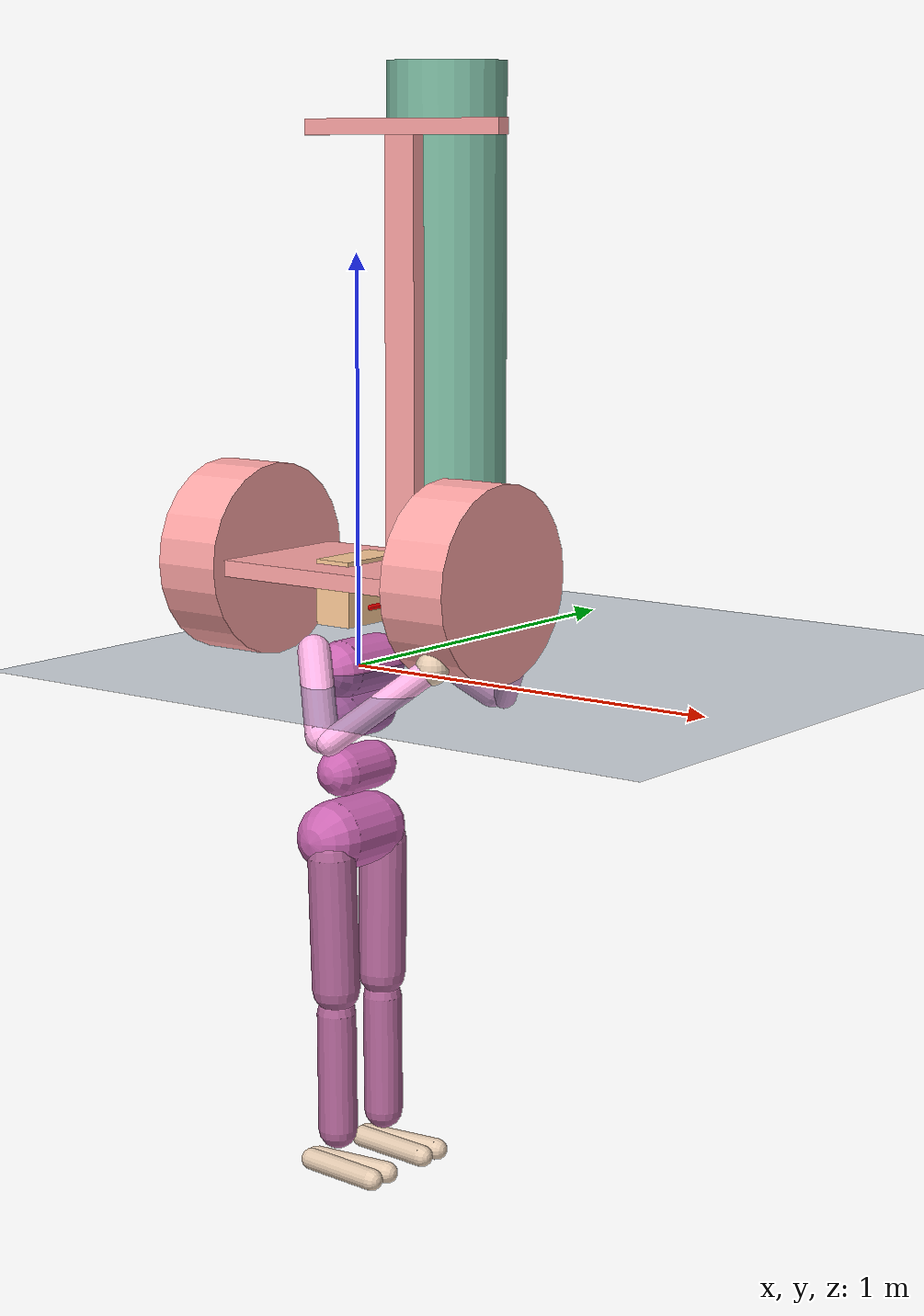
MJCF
<mujoco model="golf follow scene">
    <compiler angle="radian"/>
    <size njmax="500" nconmax="100"/>
    <option gravity="0 0 -9.81" viscosity="0.002" timestep="0.001"/>

    <default>
        <!-- 所有 geom 默认不参与碰撞 -->
        <geom contype="0" conaffinity="0"/>
    </default>

    <!-- ========== 引入模型模块 ========== -->
    <include file="human.xml"/>
    <include file="golf10_barfh_MJW.xml"/>

    <!-- ========== 统计 & 视觉 ========== -->
    <statistic center="0 0 0.3" extent="0.3"/>

    <visual>
        <headlight diffuse="0.6 0.6 0.6" ambient="0.3 0.3 0.3" specular="0 0 0"/>
        <rgba haze="0.15 0.25 0.35 1"/>
        <global azimuth="120" elevation="-15" fovy="50"/>
    </visual>

    <asset>
        <!-- ========== 行人材质（human.xml 依赖，从原 ebike 场景迁移） ========== -->
        <material name="mat_head" rgba="1 0.8 0.6 1"/>
        <material name="mat_handfoot" rgba="0.9 0.8 0.7 1"/>
        <material name="mat_torso" rgba="0.8 0.4 0.7 1"/>
        <material name="mat_arm" rgba="1.0 0.7 0.9 1"/>
        <material name="mat_leg" rgba="0.7 0.4 0.6 1"/>

        <!-- 天空盒 -->
        <texture type="skybox" builtin="gradient" rgb1="0.8 0.8 0.8" rgb2="0 0.3 0.5"
                 width="512" height="3072"/>
        <!-- 地面纹理 -->
        <texture type="2d" name="groundplane" builtin="checker" mark="edge"
                 rgb1="0.2 0.3 0.4" rgb2="0.1 0.2 0.3" markrgb="0.8 0.8 0.8"
                 width="300" height="300"/>
        <material name="groundplane" texture="groundplane" texuniform="true"
                  texrepeat="2 2" reflectance="0.2"/>
    </asset>

    <worldbody>
        <light pos="0 0 1.5" dir="0 0 -1" directional="true"/>
        <!-- 地面：唯一接触基准（与车轮 contype=2/conaffinity=1 互配） -->
        <geom name="ground" size="0 0 0.05" type="plane" friction="1.0 1.0 0.1"
              pos="0 0 0" material="groundplane" contype="1" conaffinity="2"/>
    </worldbody>
</mujoco>

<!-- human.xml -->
<mujoco>
    <worldbody>
        <body name="human_main" mocap="true">
            <inertial pos="0 0 0" mass="1.0" diaginertia="0.2 0.1 0.11"/>
            <geom name="torso" type="capsule" fromto="0 -.07 0 0 .07 0" size="0.07" material="mat_torso" />
            <geom name="head" type="box" pos="0 0 0.19" size="0.05 0.1 0.08" material="mat_head"/>
            <body name="head_face_deco" pos="0.133 0 0.19" euler="0 0 1.57">
                <geom type="sphere" size="0.02" pos="-0.05 0.08 0.03" rgba="0 0 0 1"/>
                <geom type="sphere" size="0.02" pos="0.05 0.08 0.03" rgba="0 0 0 1"/>
                <geom type="capsule" fromto="-0.02 0.09 -0.04 0.02 0.09 -0.04" size="0.01" rgba="1 0 0 1"/>
            </body>
            <geom name="uwaist" type="capsule" fromto="-.01 -.06 -.12 -.01 .06 -.12" size="0.06" material="mat_torso"/>
            <body name="right_upper_arm" pos="0 -0.17 0.06">
                <joint name="right_shoulder" type="hinge" pos="0 0 0" axis="0 1 0" limited="true" range="-1.2 1.2" stiffness="0" armature="0.0068" />
                <geom name="right_uarm" material="mat_arm" type="capsule" fromto="0 0 0 .16 -.16 -.16"  size="0.04 0.16" />
                <body name="right_lower_arm" pos=".18 -.18 -.18">
                    <joint name="right_elbow" type="hinge" pos="0 0 0" axis="0 -1 1" limited="true" range="-0.5 0.5" stiffness="0" armature="0.0028" />
                    <geom name="right_larm" material="mat_arm"  type="capsule" fromto="0.01 0.01 0.01 .17 .17 .17"  size="0.031" />
                    <geom name="right_hand" material="mat_handfoot" type="sphere" pos=".18 .18 .18"  size="0.04"/>
                </body>
            </body>
            <body name="left_upper_arm" pos="0 0.17 0.06">
                <joint name="left_shoulder" type="hinge" pos="0 0 0" axis="0 1 0" limited="true" range="-1.2 1.2" stiffness="0" armature="0.0068" />
                <geom name="left_uarm" material="mat_arm" type="capsule" fromto="0 0 0 .16 .16 -.16"  size="0.04 0.16" />
                <body name="left_lower_arm" pos=".18 .18 -.18">
                    <joint name="left_elbow" type="hinge" pos="0 0 0" axis="0 1 1" limited="true" range="-0.5 0.5" stiffness="0" armature="0.0028" />
                    <geom name="left_larm" material="mat_arm" type="capsule" fromto="0.01 -0.01 0.01 .17 -.17 .17"  size="0.031" />
                    <geom name="left_hand" material="mat_handfoot" type="sphere" pos=".18 -.18 .18"  size="0.04"/>
                </body>
            </body>
            <body name="lwaist" pos="-.01 0 -0.260" quat="1.000 0 -0.002 0" >
                <geom name="lwaist" type="capsule" fromto="0 -.06 0 0 .06 0"  size="0.06" material="mat_torso"/>
                <joint name="abdomen_z" type="hinge" pos="0 0 0.065" axis="0 0 1" damping="5" stiffness="20" armature="0.02" />
                <joint name="abdomen_y" type="hinge" pos="0 0 0.065" axis="0 1 0" damping="5" stiffness="10" armature="0.02" />
                <body name="pelvis" pos="0 0 -0.165" quat="1.000 0 -0.002 0">
                    <joint name="abdomen_x" type="hinge" pos="0 0 0.1" axis="1 0 0" damping="5" stiffness="10" armature="0.02" />
                    <geom name="butt" type="capsule" fromto="-.02 -.07 0 -.02 .07 0"  size="0.09" material="mat_torso"/>
                    <body name="right_thigh" pos="0 -0.1 -0.04" >
                        <joint name="right_hip_x" type="hinge" pos="0 0 0" axis="1 0 0" damping="5" stiffness="10" armature="0.01" />
                        <joint name="right_hip_z" type="hinge" pos="0 0 0" axis="0 0 1" damping="5" stiffness="10" armature="0.01" />
                        <joint name="right_hip_y" type="hinge" pos="0 0 0" axis="0 1 0" damping="5" stiffness="20" armature="0.01" />
                        <geom name="right_thigh" type="capsule" fromto="0 0 0 0 0.01 -.34" material="mat_leg" size="0.06" />
                        <body name="right_shin" pos="0 0.01 -0.403" >
                            <joint name="right_knee" type="hinge" pos="0 0 .02" axis="0 -1 0" stiffness="1" armature="0.0060" />
                            <geom name="right_shin" type="capsule" fromto="0 0 0 0 0 -.3" material="mat_leg"  size="0.049" />
                            <body name="right_foot" pos="0 0 -.39" >
                                <joint name="right_ankle_y" type="hinge" pos="0 0 0.08" axis="0 1 0" stiffness="4" armature="0.0008" />
                                <joint name="right_ankle_x" type="hinge" pos="0 0 0.04" axis="1 0 0.5" stiffness="1"  armature="0.0006" />
                                <geom name="right_foot_cap1" type="capsule" material="mat_handfoot" fromto="-.07 -0.02 0 0.14 -0.04 0" size="0.027" />
                                <geom name="right_foot_cap2" type="capsule" material="mat_handfoot" fromto="-.07 0 0 0.14  0.02 0" size="0.027" />
                            </body>
                        </body>
                    </body>
                    <body name="left_thigh" pos="0 0.1 -0.04" >
                        <joint name="left_hip_x" type="hinge" pos="0 0 0" axis="-1 0 0" damping="5" stiffness="10" armature="0.01" />
                        <joint name="left_hip_z" type="hinge" pos="0 0 0" axis="0 0 -1" damping="5" stiffness="10" armature="0.01" />
                        <joint name="left_hip_y" type="hinge" pos="0 0 0" axis="0 1 0" damping="5" stiffness="20" armature="0.01" />
                        <geom name="left_thigh" material="mat_leg" type="capsule" fromto="0 0 0 0 -0.01 -.34"  size="0.06" />
                        <body name="left_shin" pos="0 -0.01 -0.403" >
                            <joint name="left_knee" type="hinge" pos="0 0 .02" axis="0 -1 0" stiffness="1" armature="0.0060" />
                            <geom name="left_shin" material="mat_leg" type="capsule" fromto="0 0 0 0 0 -.3" size="0.049" />
                            <body name="left_foot" pos="0 0 -.39" >
                                <joint name="left_ankle_y" type="hinge" pos="0 0 0.08" axis="0 1 0" stiffness="4" armature="0.0008" />
                                <joint name="left_ankle_x" type="hinge" pos="0 0 0.04" axis="1 0 0.5" stiffness="1"  armature="0.0006" />
                                <geom name="left_foot_cap1" material="mat_handfoot" type="capsule" fromto="-.07 0.02 0 0.14 0.04 0"  size="0.027" />
                                <geom name="left_foot_cap2" material="mat_handfoot" type="capsule" fromto="-.07 0 0 0.14  -0.02 0"  size="0.027" />
                            </body>
                        </body>
                    </body>
                </body>
            </body>
        </body>
    </worldbody>
</mujoco>

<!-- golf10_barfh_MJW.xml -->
<!-- 双轮差速高尔夫球车模型 -->
<!-- 尺寸：轮径48cm，轮宽18cm，轴长70cm，车把104cm，球包120cm -->
<!-- 质量：底盘37.8kg，车把5kg，球包10kg，车轮4.5kg×2，总重61.8kg -->
<mujoco model="golf10_barth">
    <!-- 材质 -->
    <asset>
        <texture type="2d" name="wheel_texture" builtin="checker" mark="edge"
                 rgb1="1 1 1" rgb2="1 0.3 0.3"
                 markrgb="0.3 0.3 0.3" width="1024" height="1024"/>
        <material name="wheel_mat" texture="wheel_texture" texuniform="true" texrepeat="5 5"/>
        <texture type="2d" name="body_texture" builtin="gradient" rgb1="1 1 1"
                 rgb2="1 0.3 0.3" width="512" height="512"/>
        <material name="body_mat" texture="body_texture" texrepeat="4 2" shininess="0.3"/>
        <texture type="2d" name="bag_texture" builtin="gradient" rgb1="1 1 1"
                 rgb2="0 0.5 0.3" width="256" height="256"/>
        <material name="bag_mat" texture="bag_texture" texrepeat="4 2" shininess="0.3"/>
    </asset>

    <worldbody>

        <!-- 整车（轮轴中心离地0.24m） -->
        <body name="segway" pos="0 0 0.24">
            <joint name="segway_free" type="free" damping="0.05"/>

            <!-- 底盘（位于车轮中心高度） -->
            <!-- 底盘质心相对轮轴：COMY0 档由代码 model.body_ipos[cid,1]=0.0 归零（平衡角≈+29°）。
                 MuJoCo 编译会把 inertial pos 的 -0.12 偏移吸收进 body frame，故 body_ipos 实为 (0,-0.12,0)，
                 运行时覆盖 y=0 使其落在轮轴正上方。 -->
            <body name="chassis" pos="0 0 0">
                <inertial pos="0.0 -0.12 0.0" quat="0.707107 0 0 0.707107"
                          mass="37.8" diaginertia="0.75 1.35 1.60"/>
                <geom type="box" size="0.35 0.20 0.02" material="body_mat"/>
            </body>

            <!-- 车把：长104cm，底部从轮轴稍上方开始 -->
            <body name="handlebar" pos="0 0 0.02">
                <inertial pos="0.0 0.0 0.0" quat="0.707107 0 0 0.707107"
                          mass="5.0" diaginertia="0.5 0.45 0.05"/>
                <geom type="box" size="0.045 0.02 0.52" pos="0 0.18 0.52" material="body_mat"/>
                <geom type="box" size="0.3 0.02 0.02" pos="0 0.18 1.04" material="body_mat"/>

                <!-- 增加一个球包挂点，让球包可以在转弯时模拟左右摇晃 -->
                <body name="bag_mount" pos="0 0.35 1.2">  <!-- 0 0 1.2是中心位置 0 0.35 1.2是球包挂前面 -->
                    <!-- 左右摆动 -->
                    <joint name="bag_swing" type="hinge" axis="0 1 0" limited="true"
                           range="-0.05 0.05" damping="2"/>
                    <!-- 球包 -->
                    <body name="golf_bag" pos="0 0 -0.6">
                        <inertial pos="0 0 0" mass="10" diaginertia="1.10 1.10 0.10"/>
                        <geom type="cylinder" size="0.15 0.6" material="bag_mat"/>
                    </body>
                </body>
            </body>

            <!-- 左轮：直径48cm，宽18cm，位置x=-0.35 -->
            <body name="l_wheel" pos="-0.35 0 0">
                <inertial pos="0 0 0" quat="0.5 0.5 -0.5 0.5"
                          mass="4.5" diaginertia="0.085 0.043 0.043"/>
                <joint name="torso_l_wheel" type="hinge" pos="0 0 0" axis="-1 0 0" damping="0.02"/>
                <geom type="cylinder" size="0.24 0.09" quat="0.707107 0 0.707107 0"
                      material="wheel_mat" contype="2" conaffinity="1" friction="2 1 0.8"/>
            </body>

            <!-- 右轮：直径48cm，宽18cm，位置x=0.35 -->
            <body name="r_wheel" pos="0.35 0 0">
                <inertial pos="0 0 0" quat="0.5 0.5 -0.5 0.5"
                          mass="4.5" diaginertia="0.085 0.043 0.043"/>
                <joint name="torso_r_wheel" type="hinge" pos="0 0 0" axis="-1 0 0" damping="0.02"/>
                <geom type="cylinder" size="0.24 0.09" quat="0.707107 0 0.707107 0"
                      material="wheel_mat" contype="2" conaffinity="1" friction="2 1 0.8"/>
            </body>
        </body>
        <site name="cmd_ch" size="0.001" pos="0 0 0.24"/>   <!-- 指令通道锚点（零增益虚拟执行器挂载处） -->
    </worldbody>

    <actuator>
        <!-- 电机 -->
        <motor name="motor_l_wheel" joint="torso_l_wheel" gear="1" ctrllimited="true" ctrlrange="-50 50"/>
        <motor name="motor_r_wheel" joint="torso_r_wheel" gear="1" ctrllimited="true" ctrlrange="-50 50"/>
        <!-- 指令通道：零增益，仅作 MuJoCo 右侧面板原生滑块（不参与动力学）。
             cmd_bag = 球包质量，实时改质量并同步平衡角锚与跟随增益。-->
        <motor name="cmd_bag" site="cmd_ch" gear="0 0 0 0 0 0" ctrllimited="true" ctrlrange="1.5 10"/>
    </actuator>

</mujoco>
